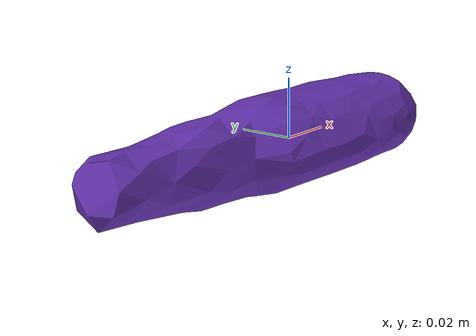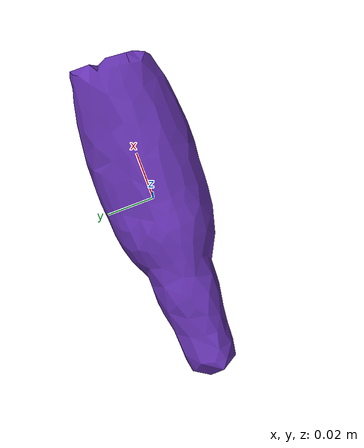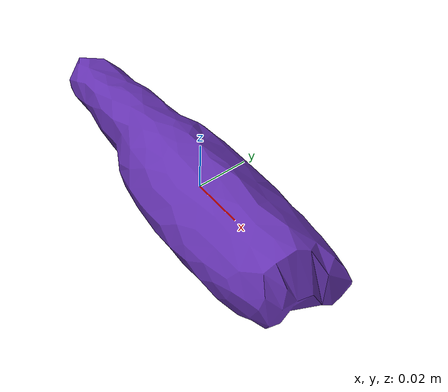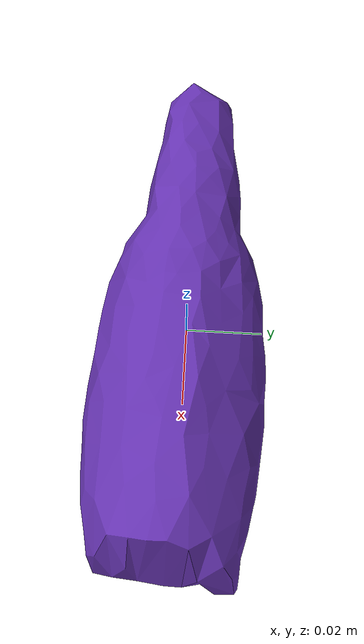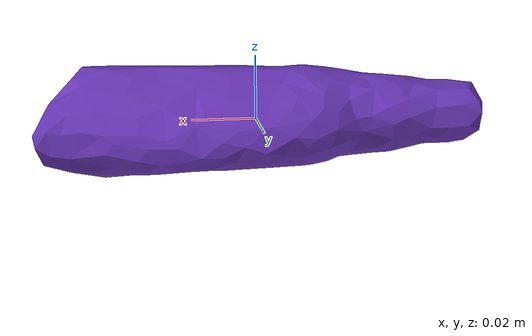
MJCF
<mujoco model="top_watertight_tiny">

  <asset>
    <mesh file="top_watertight_tiny.obj"/>
    <mesh file="top_watertight_tiny_collision_0.obj"/>
    <mesh file="top_watertight_tiny_collision_1.obj"/>
    <mesh file="top_watertight_tiny_collision_2.obj"/>
    <mesh file="top_watertight_tiny_collision_3.obj"/>
  </asset>
  <worldbody>
    <body name="top_watertight_tiny">
      <freejoint/>
      <geom solimp="0.90 0.95 0.001" solref="0.02 1.0" density="100" friction="0.95 0.4 0.3" rgba="0.4 0.2 0.7 1" mesh="top_watertight_tiny" group="2" type="mesh" contype="0" conaffinity="0"/>
      <geom solimp="0.90 0.95 0.001" solref="0.02 1.0" density="100" friction="0.95 0.4 0.3" mesh="top_watertight_tiny_collision_0" rgba="0.21540699025818089 0.3726904477661468 0.6783978355582028 1" group="3" type="mesh"/>
      <geom solimp="0.90 0.95 0.001" solref="0.02 1.0" density="100" friction="0.95 0.4 0.3" mesh="top_watertight_tiny_collision_1" rgba="0.8161354592342414 0.17189274393683196 0.10535596550930704 1" group="3" type="mesh"/>
      <geom solimp="0.90 0.95 0.001" solref="0.02 1.0" density="100" friction="0.95 0.4 0.3" mesh="top_watertight_tiny_collision_2" rgba="0.9238665582224199 0.4392114671804922 0.2725656849499978 1" group="3" type="mesh"/>
      <geom solimp="0.90 0.95 0.001" solref="0.02 1.0" density="100" friction="0.95 0.4 0.3" mesh="top_watertight_tiny_collision_3" rgba="0.05696109863861354 0.6383090917846371 0.4391399978138093 1" group="3" type="mesh"/>
    </body>
  </worldbody>
</mujoco>
